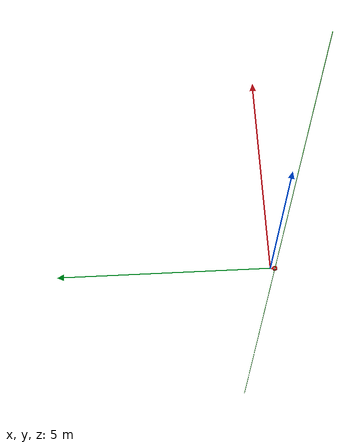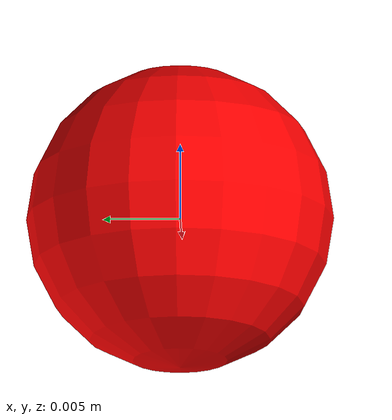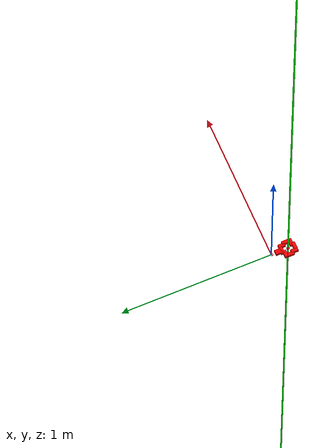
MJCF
<mujoco model="base">
  <worldbody>
    <body name="right_gripper" pos="0 0.0 0" >
      <site name="ft_frame" pos="0 0 0" size="0.01 0.01 0.01" rgba="1 0 0 1" type="sphere" group="1"></site>

      <body name="collision" pos="0 -0.11 0" quat="0.707 0 0 0.707">

         <site name="grip_site" pos="0 0 0" size="0.01 0.01 0.01" rgba="1 0 0 1" type="sphere" group="1"></site>
        <!-- This site was added for visualization. -->
        <site name="grip_site_cylinder" pos="0 0 0" size="0.005 10" rgba="0 1 0 1" type="cylinder" group="1"></site>

        <geom pos="-0.04245 0 0.0" size="0.01125 0.0225 0.01" type="box" solimp="0.998 0.998 0.001" solref="0.02 1" density="100" friction="0.95 0.3 0.1" rgba="1 0 0 1" group="1" condim="4"/>
        <geom pos="0.04245 0 0.0" size="0.01125 0.0225 0.01" type="box" solimp="0.998 0.998 0.001" solref="0.02 1" density="100" friction="0.95 0.3 0.1" rgba="1 0 0 1" group="1" condim="4"/>
        <geom pos="0 -0.04245 0.0" size="0.0225 0.01125 0.01" type="box" solimp="0.998 0.998 0.001" solref="0.02 1" density="100" friction="0.95 0.3 0.1" rgba="1 0 0 1" group="1" condim="4"/>
        <geom pos="0 0.04245 0.0" size="0.0225 0.01125 0.01" type="box" solimp="0.998 0.998 0.001" solref="0.02 1" density="100" friction="0.95 0.3 0.1" rgba="1 0 0 1" group="1" condim="4"/>
        <geom pos="-0.03 -0.03 0.0" size="0.01125 0.0225 0.01" axisangle='0 0 1 0.785398' type="box" solimp="0.998 0.998 0.001" solref="0.02 1" density="100" friction="0.95 0.3 0.1" rgba="1 0 0 1" group="1" condim="4"/>
        <geom pos="0.03 0.03 0.0" size="0.01125 0.0225 0.01" axisangle='0 0 1 0.785398' type="box" solimp="0.998 0.998 0.001" solref="0.02 1" density="100" friction="0.95 0.3 0.1" rgba="1 0 0 1" group="1" condim="4"/>
        <geom pos="0.03 -0.03 0.0" size="0.0225 0.01125 0.01" axisangle='0 0 1 0.785398' type="box" solimp="0.998 0.998 0.001" solref="0.02 1" density="100" friction="0.95 0.3 0.1" rgba="1 0 0 1" group="1" condim="4"/>
        <geom pos="-0.03 0.03 0.0" size="0.0225 0.01125 0.01" axisangle='0 0 1 0.785398' type="box" solimp="0.998 0.998 0.001" solref="0.02 1" density="100" friction="0.95 0.3 0.1" rgba="1 0 0 1" group="1" condim="4"/>
        <geom pos="0.06 0 0.0" size="0.02525 0.015875 0.01" type="box" solimp="0.998 0.998 0.001" solref="0.02 1" density="100" friction="0.95 0.3 0.1" rgba="1 0 0 1" group="1" condim="4"/>

      </body>
      <site rgba="0 0 0 0" size="0.005" pos="0 0 -0.05" name="bottom_site"/>
      <site rgba="0 0 0 0" size="0.005" pos="0 0 0.025" name="top_site"/>
      <site rgba="0 0 0 0" size="0.005" pos="0.11 0.05 0" name="horizontal_radius_site"/>
    </body>
  </worldbody>

  <sensor>
    <force name="force_ee" site="ft_frame"/>
    <torque name="torque_ee" site="ft_frame"/>
  </sensor>
</mujoco>
